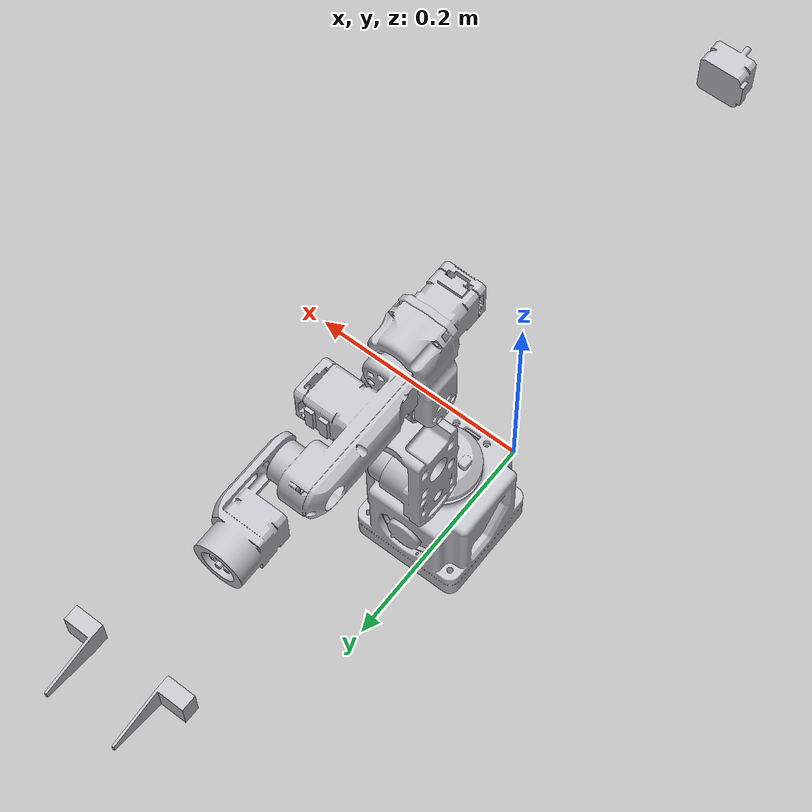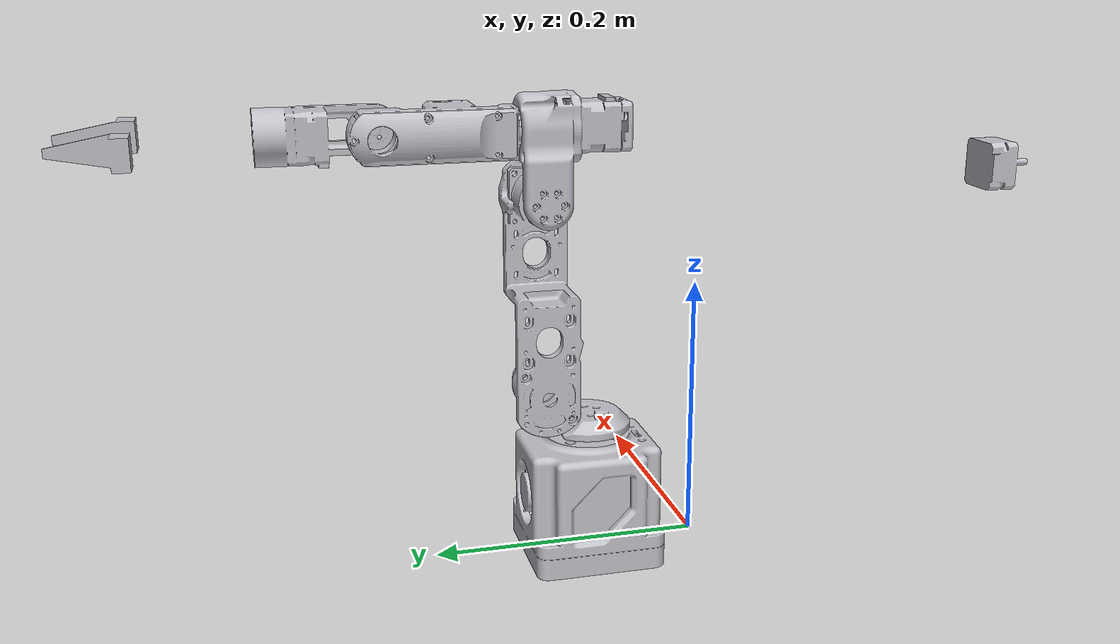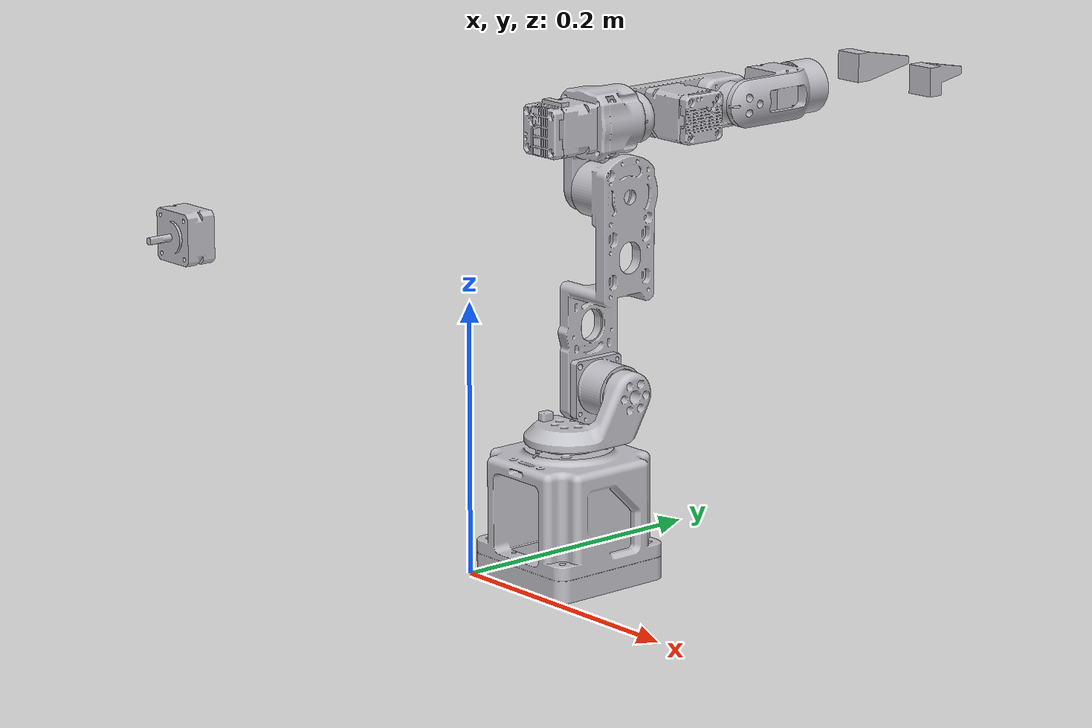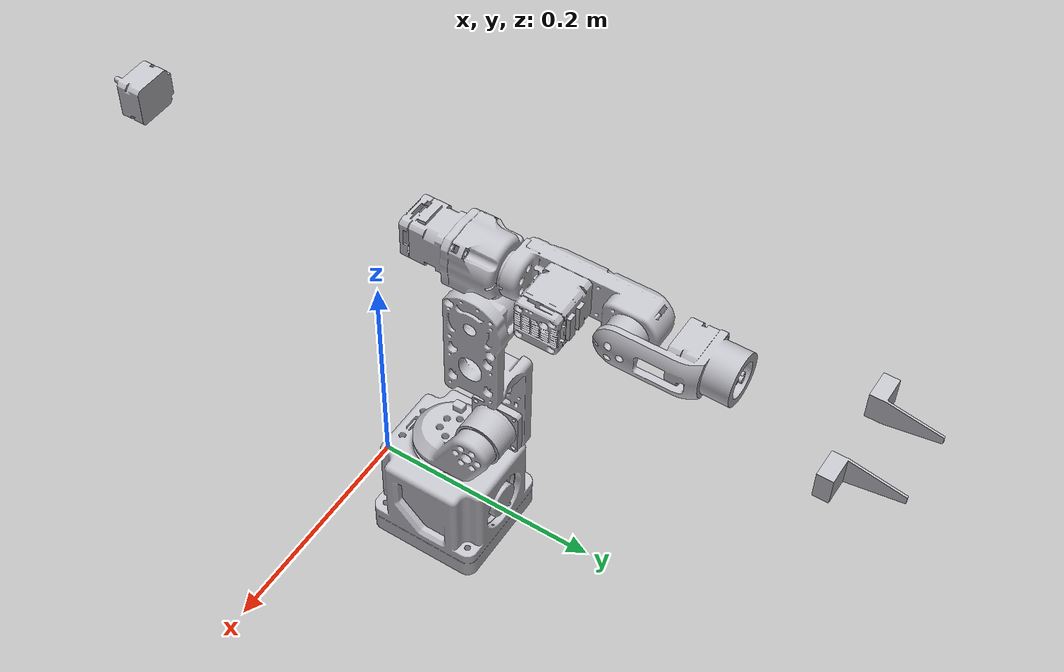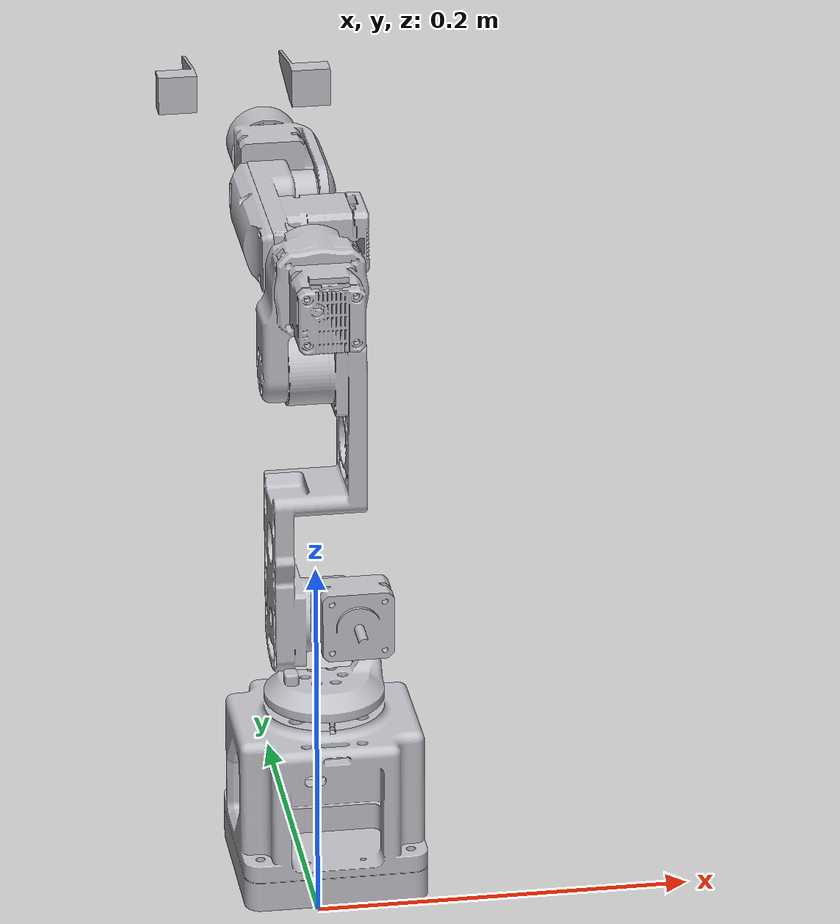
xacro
<?xml version="1.0" ?>
<robot name="dummy-ros2" xmlns:xacro="http://www.ros.org/wiki/xacro">

<xacro:include filename="$(find dummy-ros2_description)/urdf/materials.xacro" />
<xacro:include filename="$(find dummy-ros2_description)/urdf/dummy-ros2.trans" />
<link name="world" />
<joint name="world_joint" type="fixed">
  <parent link="world" />
  <child link = "base_link" />
  <origin xyz="0.0 0.0 0.0" rpy="3.1415926536 3.1415926536 0.0" />
</joint>

<link name="base_link">
  <inertial>
    <origin xyz="-0.014999999232056279 -0.08246735477620445 0.032605452564980174" rpy="0 0 0"/>
    <mass value="2.718238265964926"/>
    <inertia ixx="0.005512" iyy="0.005791" izz="0.005729" ixy="0.0" iyz="7.1e-05" ixz="-0.0"/>
  </inertial>
  <visual>
    <origin xyz="0 0 0" rpy="0 0 0"/>
    <geometry>
      <mesh filename="file://$(find dummy-ros2_description)/meshes/base_link.stl" scale="0.001 0.001 0.001"/>
    </geometry>
    <material name="silver"/>
  </visual>
  <collision>
    <origin xyz="0 0 0" rpy="0 0 0"/>
    <geometry>
      <mesh filename="file://$(find dummy-ros2_description)/meshes/base_link.stl" scale="0.001 0.001 0.001"/>
    </geometry>
  </collision>
</link>

<link name="link1_1_1">
  <inertial>
    <origin xyz="-0.009839298045306172 -0.009665764146279704 0.016866258077055246" rpy="0 0 0"/>
    <mass value="0.41661715346354466"/>
    <inertia ixx="0.00024" iyy="0.000197" izz="0.000294" ixy="-7.9e-05" iyz="7e-05" ixz="4.5e-05"/>
  </inertial>
  <visual>
    <origin xyz="0.015 0.079017 -0.0825" rpy="0 0 0"/>
    <geometry>
      <mesh filename="file://$(find dummy-ros2_description)/meshes/link1_1_1.stl" scale="0.001 0.001 0.001"/>
    </geometry>
    <material name="silver"/>
  </visual>
  <collision>
    <origin xyz="0.015 0.079017 -0.0825" rpy="0 0 0"/>
    <geometry>
      <mesh filename="file://$(find dummy-ros2_description)/meshes/link1_1_1.stl" scale="0.001 0.001 0.001"/>
    </geometry>
  </collision>
</link>

<link name="link2_1_1">
  <inertial>
    <origin xyz="0.01589274835546871 -0.0002176337870416073 0.07388173251947006" rpy="0 0 0"/>
    <mass value="0.8248343726921459"/>
    <inertia ixx="0.003112" iyy="0.003172" izz="0.000413" ixy="-3e-06" iyz="1.8e-05" ixz="0.000549"/>
  </inertial>
  <visual>
    <origin xyz="0.032 0.114017 -0.12" rpy="0 0 0"/>
    <geometry>
      <mesh filename="file://$(find dummy-ros2_description)/meshes/link2_1_1.stl" scale="0.001 0.001 0.001"/>
    </geometry>
    <material name="silver"/>
  </visual>
  <collision>
    <origin xyz="0.032 0.114017 -0.12" rpy="0 0 0"/>
    <geometry>
      <mesh filename="file://$(find dummy-ros2_description)/meshes/link2_1_1.stl" scale="0.001 0.001 0.001"/>
    </geometry>
  </collision>
</link>

<link name="link3_1_1">
  <inertial>
    <origin xyz="-0.00556719985211092 -0.0008849434541333689 0.032857930319999507" rpy="0 0 0"/>
    <mass value="0.334446749870256"/>
    <inertia ixx="0.000242" iyy="0.000299" izz="0.000122" ixy="-3e-06" iyz="5e-06" ixz="7.5e-05"/>
  </inertial>
  <visual>
    <origin xyz="-0.042 -0.017 -0.9705" rpy="0 0 0"/>
    <geometry>
      <mesh filename="file://$(find dummy-ros2_description)/meshes/link3_1_1.stl" scale="0.001 0.001 0.001"/>
    </geometry>
    <material name="silver"/>
  </visual>
  <collision>
    <origin xyz="-0.042 -0.017 -0.9705" rpy="0 0 0"/>
    <geometry>
      <mesh filename="file://$(find dummy-ros2_description)/meshes/link3_1_1.stl" scale="0.001 0.001 0.001"/>
    </geometry>
  </collision>
</link>

<link name="link4_1_1">
  <inertial>
    <origin xyz="0.004619417619842917 -0.05852434935618758 -1.7565479792924776e-07" rpy="0 0 0"/>
    <mass value="0.38229981321745393"/>
    <inertia ixx="0.000681" iyy="7.7e-05" izz="0.000663" ixy="-3e-06" iyz="0.0" ixz="-0.0"/>
  </inertial>
  <visual>
    <origin xyz="-0.0355 -0.12 -0.02" rpy="0 0 0"/>
    <geometry>
      <mesh filename="file://$(find dummy-ros2_description)/meshes/link4_1_1.stl" scale="0.001 0.001 0.001"/>
    </geometry>
    <material name="silver"/>
  </visual>
  <collision>
    <origin xyz="-0.0355 -0.12 -0.02" rpy="0 0 0"/>
    <geometry>
      <mesh filename="file://$(find dummy-ros2_description)/meshes/link4_1_1.stl" scale="0.001 0.001 0.001"/>
    </geometry>
  </collision>
</link>

<link name="link5_1_1">
  <inertial>
    <origin xyz="0.0009057999155941757 -0.02906083845119581 -2.2799463705869272e-08" rpy="0 0 0"/>
    <mass value="0.14119342984175104"/>
    <inertia ixx="0.000118" iyy="3.6e-05" izz="0.000122" ixy="2.5e-05" iyz="0.0" ixz="0.0"/>
  </inertial>
  <visual>
    <origin xyz="-0.01 -0.08 -0.318" rpy="0 0 0"/>
    <geometry>
      <mesh filename="file://$(find dummy-ros2_description)/meshes/link5_1_1.stl" scale="0.001 0.001 0.001"/>
    </geometry>
    <material name="silver"/>
  </visual>
  <collision>
    <origin xyz="-0.01 -0.08 -0.318" rpy="0 0 0"/>
    <geometry>
      <mesh filename="file://$(find dummy-ros2_description)/meshes/link5_1_1.stl" scale="0.001 0.001 0.001"/>
    </geometry>
  </collision>
</link>

<link name="link6_1_1">
  <inertial>
    <origin xyz="-0.0003068043075796188 0.01033562863039611 -3.814698834592178e-09" rpy="0 0 0"/>
    <mass value="0.21609201162441805"/>
    <inertia ixx="3.1e-05" iyy="4.2e-05" izz="3.2e-05" ixy="1e-06" iyz="-0.0" ixz="-0.0"/>
  </inertial>
  <visual>
    <origin xyz="0.013 0.2465 -0.3545" rpy="0 0 3.141592654"/>
    <geometry>
      <mesh filename="file://$(find dummy-ros2_description)/meshes/link6_1_1.stl" scale="0.001 0.001 0.001"/>
    </geometry>
    <material name="silver"/>
  </visual>
  <collision>
    <origin xyz="0.013 0.2465 -0.3545" rpy="0 0 3.141592654"/>
    <geometry>
      <mesh filename="file://$(find dummy-ros2_description)/meshes/link6_1_1.stl" scale="0.001 0.001 0.001"/>
    </geometry>
  </collision>
</link>

<!-- 夹爪链接 -->
<link name="gripper_left_link">
  <inertial>
    <origin xyz="0 0 0" rpy="0 0 0"/>
    <mass value="0.05"/>
    <inertia ixx="1e-5" iyy="1e-5" izz="1e-5" ixy="0" iyz="0" ixz="0"/>
  </inertial>
  <visual>
    <origin xyz="0 0 0" rpy="0 0 0"/>
    <geometry>
      <mesh filename="file://$(find dummy-ros2_description)/meshes/gripper.stl" scale="0.001 0.001 0.001"/>
    </geometry>
    <material name="silver"/>
  </visual>
  <collision>
    <origin xyz="0 0 0" rpy="0 0 0"/>
    <geometry>
      <mesh filename="file://$(find dummy-ros2_description)/meshes/gripper.stl" scale="0.001 0.001 0.001"/>
    </geometry>
  </collision>
</link>

<link name="gripper_right_link">
  <inertial>
    <origin xyz="0 0 0" rpy="0 0 0"/>
    <mass value="0.05"/>
    <inertia ixx="1e-5" iyy="1e-5" izz="1e-5" ixy="0" iyz="0" ixz="0"/>
  </inertial>
  <visual>
    <origin xyz="0 0 0" rpy="0 0 0"/>
    <geometry>
      <mesh filename="file://$(find dummy-ros2_description)/meshes/gripper.stl" scale="0.001 0.001 0.001"/>
    </geometry>
    <material name="silver"/>
  </visual>
  <collision>
    <origin xyz="0 0 0" rpy="0 0 0"/>
    <geometry>
      <mesh filename="file://$(find dummy-ros2_description)/meshes/gripper.stl" scale="0.001 0.001 0.001"/>
    </geometry>
  </collision>
</link>

<joint name="joint1" type="revolute">
  <origin xyz="-0.015 -0.079017 0.0825" rpy="0 0 0"/>
  <parent link="base_link"/>
  <child link="link1_1_1"/>
  <axis xyz="0.0 0.0 1.0"/>
  <limit
    lower="-2.967059728"
    upper="2.967059"
    effort="150"
    velocity="3.15"/>
</joint>

<joint name="joint2" type="revolute">
  <origin xyz="-0.017 -0.035 0.0375" rpy="0 0 0"/>
  <parent link="link1_1_1"/>
  <child link="link2_1_1"/>
  <axis xyz="1.0 0.0 -0.0"/>
  <limit
    lower="-1.308997"
    upper="1.570796"
    effort="150"
    velocity="3.15" />
</joint>

<joint name="joint3" type="revolute">
  <origin xyz="0.032 0.0 0.146" rpy="0 0 0"/>
  <parent link="link2_1_1"/>
  <child link="link3_1_1"/>
  <axis xyz="1.0 -0.0 -0.0"/>
  <limit
    lower="-1.570796"
    upper="1.570796"
    effort="150"
    velocity="3.15" />
</joint>

<joint name="joint4" type="revolute">
  <origin xyz="-0.017 -0.0175 0.052" rpy="0 0 0"/>
  <parent link="link3_1_1"/>
  <child link="link4_1_1"/>
  <axis xyz="0.0 -1.0 0.0"/>
  <limit
    lower="-3.14"
    upper="3.14"
    effort="150"
    velocity="3.15" />
</joint>

<joint name="joint5" type="revolute">
  <origin xyz="-0.0176 -0.1025 0.0" rpy="0 0 0"/>
  <parent link="link4_1_1"/>
  <child link="link5_1_1"/>
  <axis xyz="-1.0 -0.0 0.0"/>
  <limit
    lower="-1.570796"
    upper="1.570796"
    effort="150"
    velocity="3.15" />
</joint>

<joint name="joint6" type="revolute">
  <origin xyz="0.0186 -0.0605 0.0" rpy="0 0 0"/>
  <parent link="link5_1_1"/>
  <child link="link6_1_1"/>
  <axis xyz="0.0 1.0 -0.0"/>
  <limit
    lower="-3.14"
    upper="3.14"
    effort="150"
    velocity="3.15" />
</joint>

<!-- 夹爪关节 -->
<joint name="joint7" type="prismatic">
  <origin xyz="0.014000 0.232000 0.353000" rpy="3.141592654 0.000000 0.000000"/>
  <parent link="link6_1_1"/>
  <child link="gripper_left_link"/>
  <axis xyz="-1.0 0.0 0.0"/>
  <limit
    lower="0.000000"
    upper="0.025000"
    effort="50"
    velocity="0.5"/>
</joint>

<joint name="joint8" type="prismatic">
  <origin xyz="-0.014000 0.232000 -0.354500" rpy="0.000000 0.000000 3.141590"/>
  <parent link="link6_1_1"/>
  <child link="gripper_right_link"/>
  <axis xyz="-1.0 0.0 0.0"/>
  <limit
    lower="-0.025000"
    upper="0.000000"
    effort="50"
    velocity="0.5"/>
</joint>

</robot>
